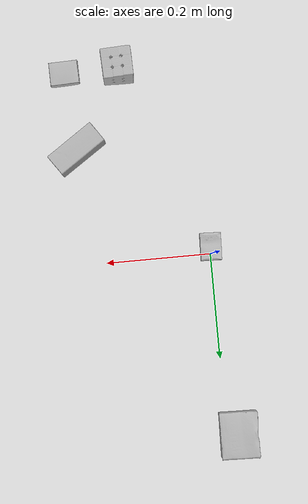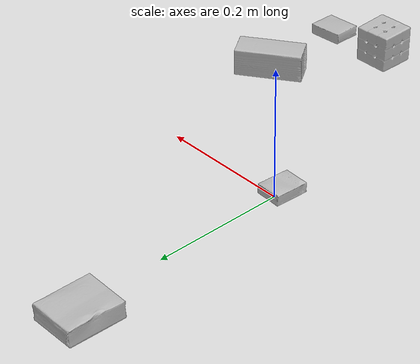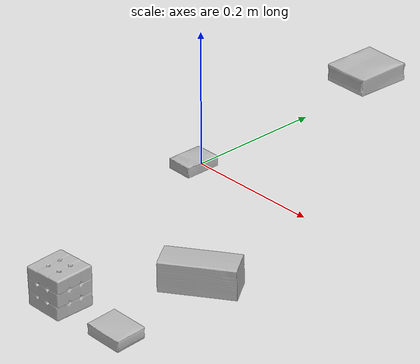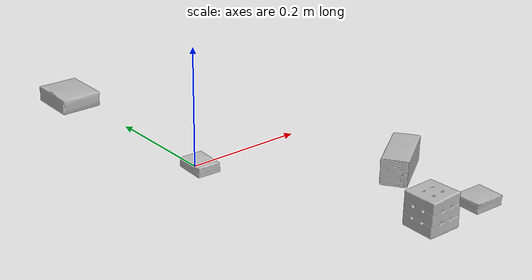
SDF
<sdf version="1.4">
  <world name="default">
    <light name="light1" type="point">
      <pose>0 0 1 0 0 0</pose>
      <diffuse>3 3 3 1</diffuse>
      <specular>3 3 3 1</specular>
    </light>
    <light name="light2" type="point">
      <pose>0 0.5 2 0 0 0</pose>
      <diffuse>1 1 1 1</diffuse>
      <specular>1 1 1 1</specular>
    </light>
    <light name="light3" type="point">
      <pose>0 0.5 2 0 0 0</pose>
      <diffuse>3 3 3 1</diffuse>
      <specular>3 3 3 1</specular>
    </light>
    <scene>
      <ambient>0.7 0.7 0.7</ambient>
    </scene>
    <model name="box1">
      <link name="link_box1">
        <collision name="default">
          <geometry>
            <mesh>
              <uri>model://rubiks_cube/collision_meshes/collision.obj</uri>
              <scale>1.0 1.0 1.0</scale>
            </mesh>
          </geometry>
          <surface>
            <friction>
              <ode>
                <mu>0.5</mu>
                <mu2>0.5</mu2>
              </ode>
            </friction>
          <contact>
        <ode>
            <max_vel>0</max_vel>
            <min_depth>0.0001</min_depth>
            <kp>1e8</kp>
        </ode>
    </contact></surface>
        </collision>
        <visual name="default">
          <geometry>
            <mesh>
              <uri>model://rubiks_cube/visual_meshes/visual.dae</uri>
              <scale>1.0 1.0 1.0</scale>
            </mesh>
          </geometry>
        </visual>
        <inertial>
          <mass>0.16542086005210876</mass>
          <pose>2.6721041649580002e-05 5.256967051536776e-05 -7.264316536748083e-06 -0.054673137900176624 -0.09813866632394339 -0.03445580911338559</pose>
          <inertia>
            <ixx>9.140613e-05</ixx>
            <iyy>9.097988e-05</iyy>
            <izz>9.216359e-05</izz>
            <ixy>0</ixy>
            <ixz>0</ixz>
            <iyz>0</iyz>
          </inertia>
        </inertial>
      </link>
      <pose>0.1459304243326187 -0.3703344762325287 0.02867897041141987 -2.614786802334965e-06 -8.267073731587078e-07 0.03497132158953994</pose>
    </model>
    <model name="box2">
      <link name="link_box2">
        <collision name="default">
          <geometry>
            <mesh>
              <uri>model://cracker_box/collision_meshes/collision.obj</uri>
              <scale>0.25 0.25 0.25</scale>
            </mesh>
          </geometry>
          <surface>
            <friction>
              <ode>
                <mu>0.5</mu>
                <mu2>0.5</mu2>
              </ode>
            </friction>
          <contact>
        <ode>
            <max_vel>0</max_vel>
            <min_depth>0.0001</min_depth>
            <kp>1e8</kp>
        </ode>
    </contact></surface>
        </collision>
        <visual name="default">
          <geometry>
            <mesh>
              <uri>model://cracker_box/visual_meshes/visual.dae</uri>
              <scale>0.25 0.25 0.25</scale>
            </mesh>
          </geometry>
        </visual>
        <inertial>
          <mass>0.04381135478615761</mass>
          <pose>0.00023660462466068566 6.358561222441494e-05 -0.0004257383698131889 -0.00031620747829542317 -0.011106489600678707 0.002546794302661479</pose>
          <inertia>
            <ixx>6.9647826e-06</ixx>
            <iyy>1.1500225e-05</iyy>
            <izz>1.6411877e-05</izz>
            <ixy>0</ixy>
            <ixz>0</ixz>
            <iyz>0</iyz>
          </inertia>
        </inertial>
      </link>
      <pose>-0.000542805646546185 -0.01403934694826603 0.009096025489270687 -0.014050444656396249 -0.005016632293584762 1.534149728062335</pose>
    </model>
    <model name="box3">
      <link name="link_box3">
        <collision name="default">
          <geometry>
            <mesh>
              <uri>model://gelatin_box/collision_meshes/collision.obj</uri>
              <scale>1.0 1.0 1.0</scale>
            </mesh>
          </geometry>
          <surface>
            <friction>
              <ode>
                <mu>0.5</mu>
                <mu2>0.5</mu2>
              </ode>
            </friction>
          <contact>
        <ode>
            <max_vel>0</max_vel>
            <min_depth>0.0001</min_depth>
            <kp>1e8</kp>
        </ode>
    </contact></surface>
        </collision>
        <visual name="default">
          <geometry>
            <mesh>
              <uri>model://gelatin_box/visual_meshes/visual.dae</uri>
              <scale>1.0 1.0 1.0</scale>
            </mesh>
          </geometry>
        </visual>
        <inertial>
          <mass>0.23367169499397278</mass>
          <pose>0.0004319618456065655 0.00011156871914863586 -0.0003640321083366871 -0.0010503719733775277 -0.004755817758083372 0.016440561333906818</pose>
          <inertia>
            <ixx>0.00016495313</ixx>
            <iyy>0.00011782518</iyy>
            <izz>0.00025109548</izz>
            <ixy>0</ixy>
            <ixz>0</ixz>
            <iyz>0</iyz>
          </inertia>
        </inertial>
      </link>
      <pose>-0.02146902307868004 0.3451322317123413 0.01516831573098898 0.005597427968868227 -0.007304498122441142 3.11269765724206</pose>
    </model>
    <model name="box4">
      <link name="link_box4">
        <collision name="default">
          <geometry>
            <mesh>
              <uri>model://wood_block/collision_meshes/collision.obj</uri>
              <scale>0.5 0.5 0.5</scale>
            </mesh>
          </geometry>
          <surface>
            <friction>
              <ode>
                <mu>0.5</mu>
                <mu2>0.5</mu2>
              </ode>
            </friction>
          <contact>
        <ode>
            <max_vel>0</max_vel>
            <min_depth>0.0001</min_depth>
            <kp>1e8</kp>
        </ode>
    </contact></surface>
        </collision>
        <visual name="default">
          <geometry>
            <mesh>
              <uri>model://wood_block/visual_meshes/visual.dae</uri>
              <scale>0.5 0.5 0.5</scale>
            </mesh>
          </geometry>
        </visual>
        <inertial>
          <mass>0.20833587646484375</mass>
          <pose>-2.9066577553749084e-06 -0.000285404734313488 0.00013204291462898254 -0.05220975529367638 -0.0051926946165042134 -0.0068613779519224715</pose>
          <inertia>
            <ixx>6.9696216e-05</ixx>
            <iyy>0.0002201704</iyy>
            <izz>0.00021934687</izz>
            <ixy>0</ixy>
            <ixz>0</ixz>
            <iyz>0</iyz>
          </inertia>
        </inertial>
      </link>
      <pose>0.2359950691461563 -0.21841828525066376 0.022629264742136 -0.005208499074242672 0.005718679940750428 -2.5388569313343115</pose>
    </model>
    <model name="box5">
      <link name="link_box5">
        <collision name="default">
          <geometry>
            <mesh>
              <uri>model://pudding_box/collision_meshes/collision.obj</uri>
              <scale>0.5 0.5 0.5</scale>
            </mesh>
          </geometry>
          <surface>
            <friction>
              <ode>
                <mu>0.5</mu>
                <mu2>0.5</mu2>
              </ode>
            </friction>
          <contact>
        <ode>
            <max_vel>0</max_vel>
            <min_depth>0.0001</min_depth>
            <kp>1e8</kp>
        </ode>
    </contact></surface>
        </collision>
        <visual name="default">
          <geometry>
            <mesh>
              <uri>model://pudding_box/visual_meshes/visual.dae</uri>
              <scale>0.5 0.5 0.5</scale>
            </mesh>
          </geometry>
        </visual>
        <inertial>
          <mass>0.032720133662223816</mass>
          <pose>0.00024474109522998333 0.0004033942532259971 -0.0002594413817860186 0.005213102275410761 -0.0066037963999523224 0.020079827026921356</pose>
          <inertia>
            <ixx>9.2471055e-06</ixx>
            <iyy>6.221519e-06</iyy>
            <izz>1.3655769e-05</izz>
            <ixy>0</ixy>
            <ixz>0</ixz>
            <iyz>0</iyz>
          </inertia>
        </inertial>
      </link>
      <pose>0.24903017282485962 -0.3690180778503418 0.00986290443688631 0.022348530414314515 -0.011391749737081862 1.5936517126119825</pose>
    </model>
  <physics type="ode">
      <max_contacts>50</max_contacts>
      <ode>
        <solver>
          <type>quick</type>
          <iters>75</iters>
        </solver>
        <constraints>
          <contact_max_correcting_vel>0</contact_max_correcting_vel>
          <contact_surface_layer>0</contact_surface_layer>
        </constraints>
      </ode>
    </physics></world>
</sdf>
